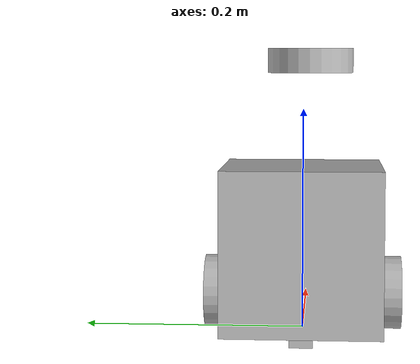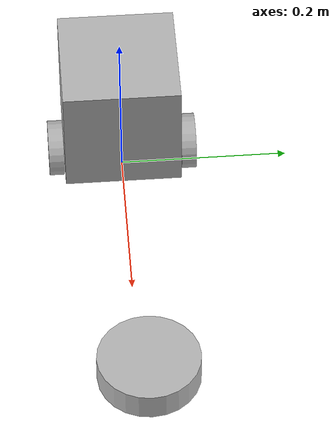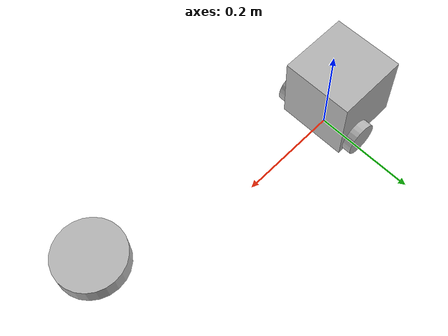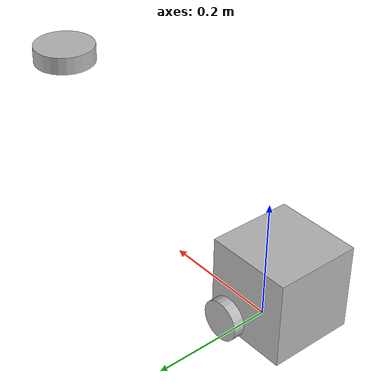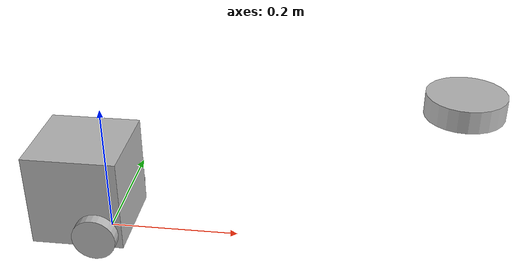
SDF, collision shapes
<?xml version="1.0" ?>
<sdf version='1.7'>
  <model name='sonar_bot'>
    <link name='base_footprint'>
      <inertial>
        <pose>-0.000481 0 0.009979 0 -0 0</pose>
        <mass>0.830745</mass>
        <inertia>
          <ixx>0.0032141</ixx>
          <ixy>-1.22941e-05</ixy>
          <ixz>3.21273e-05</ixz>
          <iyy>0.00315614</iyy>
          <iyz>-5.01209e-06</iyz>
          <izz>0.00304254</izz>
        </inertia>
      </inertial>
      <collision name='base_footprint_fixed_joint_lump__base_link_collision'>
        <pose>-0.032 0 0.08 0 -0 0</pose>
        <geometry>
          <box>
            <size>0.14 0.14 0.143</size>
          </box>
        </geometry>
      </collision>
      <collision name='base_footprint_fixed_joint_lump__caster_back_link_collision_1'>
        <pose>-0.081 1e-06 0.005 -1.57 0 0</pose>
        <geometry>
          <box>
            <size>0.03 0.009 0.02</size>
          </box>
        </geometry>
      </collision>
      <collision name='base_footprint_fixed_joint_lump__base_sonar_front_collision_2'>
        <pose>0.5 0 0.25 0 -0 0</pose>
        <geometry>
          <box>
            <size>0.01 0.01 0.01</size>
          </box>
        </geometry>
        <surface>
          <contact>
            <ode/>
          </contact>
          <friction>
            <ode/>
          </friction>
        </surface>
      </collision>
      <collision name='base_footprint_fixed_joint_lump__base_sonar_front_collision_3'>
        <pose>0.515 0 0.2435 0 -0 0</pose>
        <geometry>
          <cylinder>
            <length>0.0315</length>
            <radius>0.055</radius>
          </cylinder>
        </geometry>
        <surface>
          <contact>
            <ode/>
          </contact>
          <friction>
            <ode/>
          </friction>
        </surface>
      </collision>
      <visual name='base_footprint_fixed_joint_lump__base_link_visual'>
        <pose>-0.032 0 0.01 0 -0 0</pose>
        <geometry>
          <mesh>
            <scale>0.001 0.001 0.001</scale>
            <uri>model://turtlebot3_description/meshes/bases/burger_base.stl</uri>
          </mesh>
        </geometry>
      </visual>
      <visual name='base_footprint_fixed_joint_lump__base_sonar_front_visual_1'>
        <pose>0.5 0 0.25 0 -0 0</pose>
        <geometry>
          <box>
            <size>0.01 0.01 0.01</size>
          </box>
        </geometry>
      </visual>
      <sensor name='TeraRanger' type='ray'>
        <visualize>1</visualize>
        <update_rate>50</update_rate>
        <ray>
          <scan>
            <horizontal>
              <samples>10</samples>
              <resolution>1</resolution>
              <min_angle>-0.14835</min_angle>
              <max_angle>0.14835</max_angle>
            </horizontal>
            <vertical>
              <samples>10</samples>
              <resolution>1</resolution>
              <min_angle>-0.14835</min_angle>
              <max_angle>0.14835</max_angle>
            </vertical>
          </scan>
          <range>
            <min>0.01</min>
            <max>2</max>
            <resolution>0.02</resolution>
          </range>
        </ray>
        <plugin name='gazebo_ros_range' filename='libgazebo_ros_range.so'>
          <ros>
            <remapping>~/out:=/sensor/sonar_front</remapping>
          </ros>
          <gaussianNoise>0.005</gaussianNoise>
          <alwaysOn>1</alwaysOn>
          <updateRate>50</updateRate>
          <topicName>sensor/ir_front</topicName>
          <frameName>base_ir_front</frameName>
          <radiation>INFRARED</radiation>
          <fov>0.2967</fov>
        </plugin>
        <pose>0.5 0 0.25 0 -0 0</pose>
      </sensor>
    </link>
    <joint name='wheel_left_joint' type='revolute'>
      <pose relative_to='base_footprint'>0 0.08 0.033 -1.57 0 0</pose>
      <parent>base_footprint</parent>
      <child>wheel_left_link</child>
      <axis>
        <xyz>0 0 1</xyz>
        <limit>
          <lower>-1e+16</lower>
          <upper>1e+16</upper>
        </limit>
        <dynamics>
          <spring_reference>0</spring_reference>
          <spring_stiffness>0</spring_stiffness>
        </dynamics>
      </axis>
    </joint>
    <link name='wheel_left_link'>
      <pose relative_to='wheel_left_joint'>0 0 0 0 -0 0</pose>
      <inertial>
        <pose>0 0 0 0 -0 0</pose>
        <mass>0.0284989</mass>
        <inertia>
          <ixx>1.11756e-05</ixx>
          <ixy>-4.23698e-11</ixy>
          <ixz>-5.93817e-09</ixz>
          <iyy>1.11924e-05</iyy>
          <iyz>-1.44001e-11</iyz>
          <izz>2.07126e-05</izz>
        </inertia>
      </inertial>
      <collision name='wheel_left_link_collision'>
        <pose>0 0 0 0 -0 0</pose>
        <geometry>
          <cylinder>
            <length>0.018</length>
            <radius>0.033</radius>
          </cylinder>
        </geometry>
      </collision>
      <visual name='wheel_left_link_visual'>
        <pose>0 0 0 1.57 -0 0</pose>
        <geometry>
          <mesh>
            <scale>0.001 0.001 0.001</scale>
            <uri>model://turtlebot3_description/meshes/wheels/left_tire.stl</uri>
          </mesh>
        </geometry>
      </visual>
    </link>
    <joint name='wheel_right_joint' type='revolute'>
      <pose relative_to='base_footprint'>0 -0.08 0.033 -1.57 0 0</pose>
      <parent>base_footprint</parent>
      <child>wheel_right_link</child>
      <axis>
        <xyz>0 0 1</xyz>
        <limit>
          <lower>-1e+16</lower>
          <upper>1e+16</upper>
        </limit>
        <dynamics>
          <spring_reference>0</spring_reference>
          <spring_stiffness>0</spring_stiffness>
        </dynamics>
      </axis>
    </joint>
    <link name='wheel_right_link'>
      <pose relative_to='wheel_right_joint'>0 0 0 0 -0 0</pose>
      <inertial>
        <pose>0 0 0 0 -0 0</pose>
        <mass>0.0284989</mass>
        <inertia>
          <ixx>1.11756e-05</ixx>
          <ixy>-4.23698e-11</ixy>
          <ixz>-5.93817e-09</ixz>
          <iyy>1.11924e-05</iyy>
          <iyz>-1.44001e-11</iyz>
          <izz>2.07126e-05</izz>
        </inertia>
      </inertial>
      <collision name='wheel_right_link_collision'>
        <pose>0 0 0 0 -0 0</pose>
        <geometry>
          <cylinder>
            <length>0.018</length>
            <radius>0.033</radius>
          </cylinder>
        </geometry>
      </collision>
      <visual name='wheel_right_link_visual'>
        <pose>0 0 0 1.57 -0 0</pose>
        <geometry>
          <mesh>
            <scale>0.001 0.001 0.001</scale>
            <uri>model://turtlebot3_description/meshes/wheels/right_tire.stl</uri>
          </mesh>
        </geometry>
      </visual>
    </link>
    <frame name='caster_back_joint' attached_to='base_link'>
      <pose>-0.081 0 -0.004 -1.57 0 0</pose>
    </frame>
    <frame name='caster_back_link' attached_to='caster_back_joint'/>
    <frame name='base_joint' attached_to='base_footprint'>
      <pose>0 0 0.01 0 -0 0</pose>
    </frame>
    <frame name='base_link' attached_to='base_joint'/>
    <frame name='sonar_front_joint' attached_to='base_footprint'>
      <pose>0.5 0 0.25 0 -0 0</pose>
    </frame>
    <frame name='base_sonar_front' attached_to='sonar_front_joint'/>
  </model>
</sdf>
